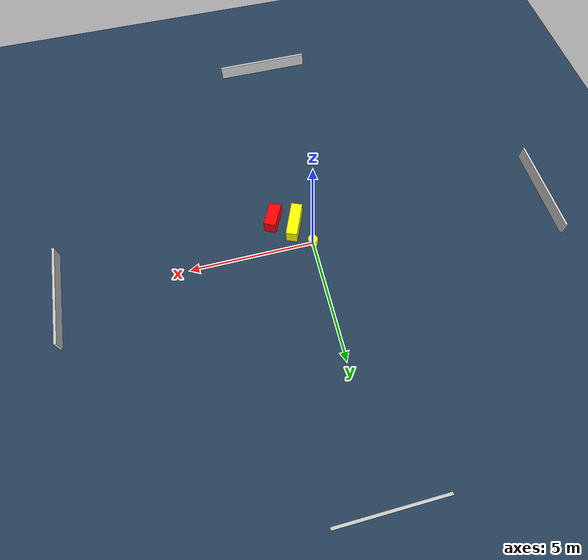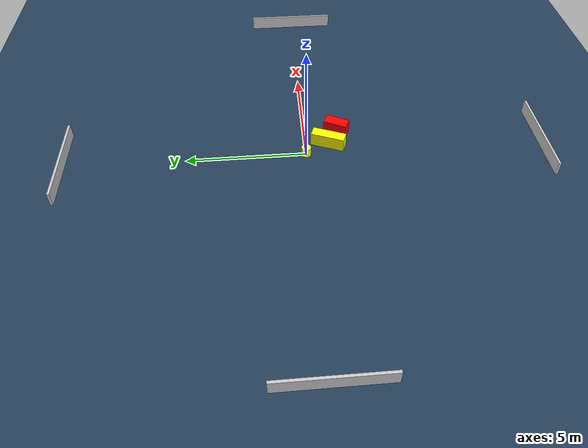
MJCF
<?xml version="1.0" ?>
<mujoco model="generated_environment">
  <option timestep="0.01" integrator="RK4" cone="elliptic"/>
  <default>
    <geom density="1"/>
  </default>
  <asset>
    <texture builtin="gradient" height="3072" name="skybox" rgb1="0.3 0.5 0.7" rgb2="0 0 0" type="skybox" width="512"/>
    <texture builtin="checker" height="300" name="groundplane" rgb1="0.2 0.3 0.4" rgb2="0.1 0.2 0.3" type="2d" width="300"/>
    <material name="groundplane" reflectance="0.2" texrepeat="5 5" texture="groundplane"/>
  </asset>
  <worldbody>
    <light dir="0 0 -1" directional="true" pos="0 0 1.5"/>
    <geom condim="3" friction="0.5 0.005 0.001" material="groundplane" name="floor" pos="0 0 0" size="0 0 0.05" type="plane"/>
    <body name="walls">
      <geom name="wall_1" condim="4" pos="-10.0 0.0 0.3" rgba="0.800000011920929 0.800000011920929 0.800000011920929 1.0" size="0.05 2.0 0.3" type="box"/>
      <geom name="wall_2" condim="4" pos="10.0 0.0 0.3" rgba="0.800000011920929 0.800000011920929 0.800000011920929 1.0" size="0.05 2.0 0.3" type="box"/>
      <geom name="wall_3" condim="4" pos="0.0 -10.0 0.3" rgba="0.800000011920929 0.800000011920929 0.800000011920929 1.0" size="2.0 0.05 0.3" type="box"/>
      <geom name="wall_4" condim="4" pos="0.0 10.0 0.3" rgba="0.800000011920929 0.800000011920929 0.800000011920929 1.0" size="2.0 0.05 0.3" type="box"/>
    </body>
    <body name="robot">
      <joint name="joint_x" type="slide" pos="0 0 0" axis="1 0 0"/>
      <joint name="joint_y" type="slide" pos="0 0 0" axis="0 1 0"/>
      <geom name="robot" type="cylinder" pos="0.0 0.0 0.2" size="0.2 0.2 0.0" mass="5.0" friction="1.0 0.005 0.0001" condim="4" rgba="1.0 1.0 0.0 1.0"/>
    </body>
    <body name="obstacle_1_movable">
      <geom name="obstacle_1_movable" condim="4" pos="0.5318311771378117 -0.9831487024410472 0.3" euler="0 0 67.9045047097893" friction="0.0 0.005 0.001" rgba="1.0 1.0 0.0 1.0" size="0.7151426726461714 0.22633244597838886 0.3" type="box" mass="0.1"/>
      <joint type="free"/>
    </body>
    <body name="obstacle_2_static">
      <geom name="obstacle_2_static" condim="4" pos="1.3345425136973772 -1.411194256078063 0.3" euler="0 0 153.26410780359723" friction="0.0 0.005 0.001" rgba="1.0 0.0 0.0 1.0" size="0.24331998651902992 0.5048499334971444 0.3" type="box"/>
    </body>
  </worldbody>
  <actuator>
    <motor name="actuator_x" joint="joint_x" gear="1" ctrlrange="-1 1"/>
    <motor name="actuator_y" joint="joint_y" gear="1" ctrlrange="-1 1"/>
  </actuator>
</mujoco>
